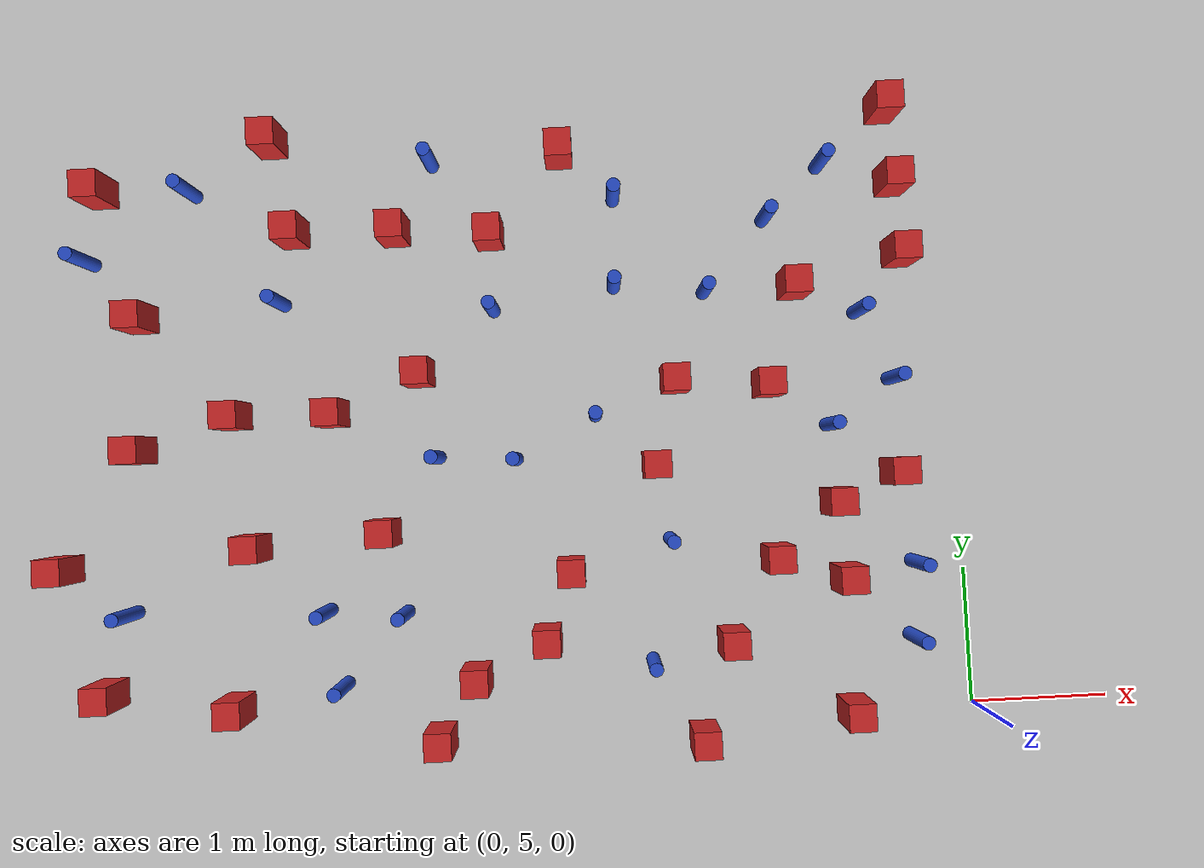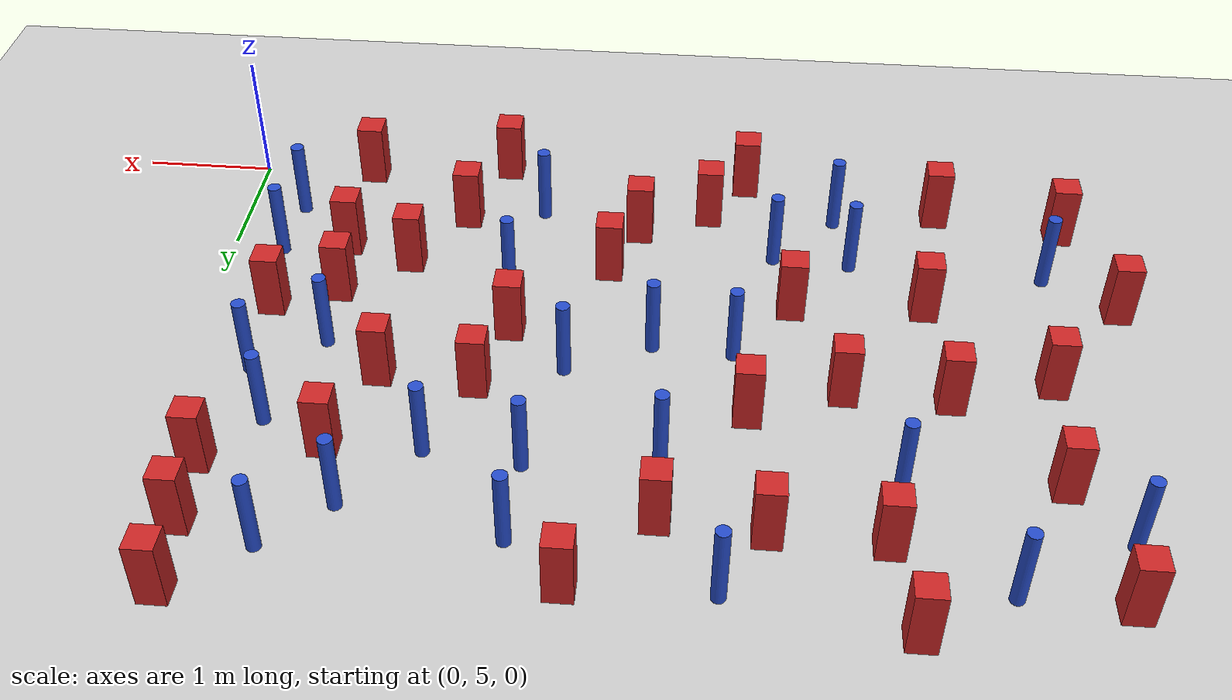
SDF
<sdf version="1.6">
 <world name="default">
  <model name="ground_plane">
   <static>1</static>
   <link name="link">
    <collision name="collision">
     <geometry><plane><normal>0 0 1</normal><size>100 100</size></plane></geometry>
     <surface><friction><ode><mu>100</mu><mu2>50</mu2></ode></friction></surface>
    </collision>
    <visual name="visual">
     <cast_shadows>0</cast_shadows>
     <geometry><plane><normal>0 0 1</normal><size>100 100</size></plane></geometry>
     <material>
      <ambient>1.0 1.0 1.0 1.0</ambient>
      <diffuse>0.8 0.8 0.8 1.0</diffuse>
      <specular>0.01 0.01 0.01 1.000000</specular>
     </material>
    </visual>
   </link>
  </model>
  <model name="square_post_obstacle12">
   <static>true</static>
   <pose>-4.15529586419 8.73507589895 8.22691968438e-08 7.22125133819e-06 -7.54495500217e-07 2.29674213826e-05</pose>
   <link name="link">
    <pose>0 0 0.25 0 -0 0</pose>
    <inertial>
     <mass>100</mass>
     <inertia>
      <ixx>0.166667</ixx>
      <ixy>0</ixy>
      <ixz>0</ixz>
      <iyy>0.166667</iyy>
      <iyz>0</iyz>
      <izz>0.166667</izz>
     </inertia>
    </inertial>
    <collision name="collision"><geometry><box><size>.2 .2 .5</size></box></geometry></collision>
    <visual name="visual">
     <geometry><box><size>.2 .2 .5</size></box></geometry>
     <material>
      <script><name>Gazebo/Red</name><uri>file://media/materials/scripts/gazebo.material</uri></script>
     </material>
    </visual>
   </link>
  </model>
  <model name="pole_obstacle11">
   <static>true</static>
   <pose>-2.20432614599 6.33320191018 2.88873142074e-08 -9.90536689859e-09 4.60219948989e-07 -1.20965994961e-07</pose>
   <link name="link">
    <pose>0 0 0.3 0 -0 0</pose>
    <inertial>
     <mass>1</mass>
     <inertia><ixx>0.145833</ixx><ixy>0</ixy><ixz>0</ixz><iyy>0.145833</iyy><iyz>0</iyz><izz>0.125</izz></inertia>
    </inertial>
    <collision name="collision">
     <geometry><cylinder><radius>0.05</radius><length>.6</length></cylinder></geometry>
    </collision>
    <visual name="visual">
     <geometry><cylinder><radius>0.05</radius><length>.6</length></cylinder></geometry>
     <material>
      <script><name>Gazebo/Blue</name><uri>file://media/materials/scripts/gazebo.material</uri></script>
     </material>
    </visual>
   </link>
  </model>
  <model name="square_post_obstacle20">
   <static>true</static>
   <pose>-5.46918392373 5.24288375753 8.22691968438e-08 7.2212513382e-06 -7.54495500217e-07 2.29674213826e-05</pose>
   <link name="link">
    <pose>0 0 0.25 0 -0 0</pose>
    <inertial>
     <mass>100</mass>
     <inertia>
      <ixx>0.166667</ixx>
      <ixy>0</ixy>
      <ixz>0</ixz>
      <iyy>0.166667</iyy>
      <iyz>0</iyz>
      <izz>0.166667</izz>
     </inertia>
    </inertial>
    <collision name="collision"><geometry><box><size>.2 .2 .5</size></box></geometry></collision>
    <visual name="visual">
     <geometry><box><size>.2 .2 .5</size></box></geometry>
     <material>
      <script><name>Gazebo/Red</name><uri>file://media/materials/scripts/gazebo.material</uri></script>
     </material>
    </visual>
   </link>
  </model>
  <model name="pole_obstacle12">
   <static>true</static>
   <pose>-0.981018825531 7.1291223296 2.88873142074e-08 -9.90536689644e-09 4.60219948994e-07 -1.20965994957e-07</pose>
   <link name="link">
    <pose>0 0 0.3 0 -0 0</pose>
    <inertial>
     <mass>1</mass>
     <inertia><ixx>0.145833</ixx><ixy>0</ixy><ixz>0</ixz><iyy>0.145833</iyy><iyz>0</iyz><izz>0.125</izz></inertia>
    </inertial>
    <collision name="collision">
     <geometry><cylinder><radius>0.05</radius><length>.6</length></cylinder></geometry>
    </collision>
    <visual name="visual">
     <geometry><cylinder><radius>0.05</radius><length>.6</length></cylinder></geometry>
     <material>
      <script><name>Gazebo/Blue</name><uri>file://media/materials/scripts/gazebo.material</uri></script>
     </material>
    </visual>
   </link>
  </model>
  <model name="square_post_obstacle21">
   <static>true</static>
   <pose>-2.03028492216 4.86221257584 8.22691968438e-08 7.22125133819e-06 -7.54495500217e-07 2.29674213826e-05</pose>
   <link name="link">
    <pose>0 0 0.25 0 -0 0</pose>
    <inertial>
     <mass>100</mass>
     <inertia>
      <ixx>0.166667</ixx>
      <ixy>0</ixy>
      <ixz>0</ixz>
      <iyy>0.166667</iyy>
      <iyz>0</iyz>
      <izz>0.166667</izz>
     </inertia>
    </inertial>
    <collision name="collision"><geometry><box><size>.2 .2 .5</size></box></geometry></collision>
    <visual name="visual">
     <geometry><box><size>.2 .2 .5</size></box></geometry>
     <material>
      <script><name>Gazebo/Red</name><uri>file://media/materials/scripts/gazebo.material</uri></script>
     </material>
    </visual>
   </link>
  </model>
  <model name="pole_obstacle21">
   <static>true</static>
   <pose>-2.37584562828 5.43707211398 2.88873142074e-08 -9.90536689859e-09 4.60219948989e-07 -1.20965994961e-07</pose>
   <link name="link">
    <pose>0 0 0.3 0 -0 0</pose>
    <inertial>
     <mass>1</mass>
     <inertia><ixx>0.145833</ixx><ixy>0</ixy><ixz>0</ixz><iyy>0.145833</iyy><iyz>0</iyz><izz>0.125</izz></inertia>
    </inertial>
    <collision name="collision">
     <geometry><cylinder><radius>0.05</radius><length>.6</length></cylinder></geometry>
    </collision>
    <visual name="visual">
     <geometry><cylinder><radius>0.05</radius><length>.6</length></cylinder></geometry>
     <material>
      <script><name>Gazebo/Blue</name><uri>file://media/materials/scripts/gazebo.material</uri></script>
     </material>
    </visual>
   </link>
  </model>
  <model name="square_post_obstacle32">
   <static>true</static>
   <pose>-1.78459588977 5.56165740867 8.22691968438e-08 7.2212513382e-06 -7.54495500217e-07 2.29674213826e-05</pose>
   <link name="link">
    <pose>0 0 0.25 0 -0 0</pose>
    <inertial>
     <mass>100</mass>
     <inertia>
      <ixx>0.166667</ixx>
      <ixy>0</ixy>
      <ixz>0</ixz>
      <iyy>0.166667</iyy>
      <iyz>0</iyz>
      <izz>0.166667</izz>
     </inertia>
    </inertial>
    <collision name="collision"><geometry><box><size>.2 .2 .5</size></box></geometry></collision>
    <visual name="visual">
     <geometry><box><size>.2 .2 .5</size></box></geometry>
     <material>
      <script><name>Gazebo/Red</name><uri>file://media/materials/scripts/gazebo.material</uri></script>
     </material>
    </visual>
   </link>
  </model>
  <model name="square_post_obstacle35">
   <static>true</static>
   <pose>-4.67540025355 7.38899250749 8.22691968438e-08 7.2212513382e-06 -7.54495500217e-07 2.29674213826e-05</pose>
   <link name="link">
    <pose>0 0 0.25 0 -0 0</pose>
    <inertial>
     <mass>100</mass>
     <inertia>
      <ixx>0.166667</ixx>
      <ixy>0</ixy>
      <ixz>0</ixz>
      <iyy>0.166667</iyy>
      <iyz>0</iyz>
      <izz>0.166667</izz>
     </inertia>
    </inertial>
    <collision name="collision"><geometry><box><size>.2 .2 .5</size></box></geometry></collision>
    <visual name="visual">
     <geometry><box><size>.2 .2 .5</size></box></geometry>
     <material>
      <script><name>Gazebo/Red</name><uri>file://media/materials/scripts/gazebo.material</uri></script>
     </material>
    </visual>
   </link>
  </model>
  <model name="pole_obstacle36">
   <static>true</static>
   <pose>-4.6694628473 5.37134205562 2.88873142074e-08 -9.90536690842e-09 4.60219948965e-07 -1.20965994976e-07</pose>
   <link name="link">
    <pose>0 0 0.3 0 -0 0</pose>
    <inertial>
     <mass>1</mass>
     <inertia><ixx>0.145833</ixx><ixy>0</ixy><ixz>0</ixz><iyy>0.145833</iyy><iyz>0</iyz><izz>0.125</izz></inertia>
    </inertial>
    <collision name="collision">
     <geometry><cylinder><radius>0.05</radius><length>.6</length></cylinder></geometry>
    </collision>
    <visual name="visual">
     <geometry><cylinder><radius>0.05</radius><length>.6</length></cylinder></geometry>
     <material>
      <script><name>Gazebo/Blue</name><uri>file://media/materials/scripts/gazebo.material</uri></script>
     </material>
    </visual>
   </link>
  </model>
  <model name="square_post_obstacle36">
   <static>true</static>
   <pose>-4.01650090892 7.65901872811 8.22691968438e-08 7.2212513382e-06 -7.54495500217e-07 2.29674213826e-05</pose>
   <link name="link">
    <pose>0 0 0.25 0 -0 0</pose>
    <inertial>
     <mass>100</mass>
     <inertia>
      <ixx>0.166667</ixx>
      <ixy>0</ixy>
      <ixz>0</ixz>
      <iyy>0.166667</iyy>
      <iyz>0</iyz>
      <izz>0.166667</izz>
     </inertia>
    </inertial>
    <collision name="collision"><geometry><box><size>.2 .2 .5</size></box></geometry></collision>
    <visual name="visual">
     <geometry><box><size>.2 .2 .5</size></box></geometry>
     <material>
      <script><name>Gazebo/Red</name><uri>file://media/materials/scripts/gazebo.material</uri></script>
     </material>
    </visual>
   </link>
  </model>
  <model name="square_post_obstacle37">
   <static>true</static>
   <pose>-1.19906093287 8.18536717646 8.22691968438e-08 7.22125133819e-06 -7.54495500217e-07 2.29674213826e-05</pose>
   <link name="link">
    <pose>0 0 0.25 0 -0 0</pose>
    <inertial>
     <mass>100</mass>
     <inertia>
      <ixx>0.166667</ixx>
      <ixy>0</ixy>
      <ixz>0</ixz>
      <iyy>0.166667</iyy>
      <iyz>0</iyz>
      <izz>0.166667</izz>
     </inertia>
    </inertial>
    <collision name="collision"><geometry><box><size>.2 .2 .5</size></box></geometry></collision>
    <visual name="visual">
     <geometry><box><size>.2 .2 .5</size></box></geometry>
     <material>
      <script><name>Gazebo/Red</name><uri>file://media/materials/scripts/gazebo.material</uri></script>
     </material>
    </visual>
   </link>
  </model>
  <model name="pole_obstacle40">
   <static>true</static>
   <pose>-0.439445643847 5.53030472204 2.88873142074e-08 -9.90536689683e-09 4.60219948993e-07 -1.20965994957e-07</pose>
   <link name="link">
    <pose>0 0 0.3 0 -0 0</pose>
    <inertial>
     <mass>1</mass>
     <inertia><ixx>0.145833</ixx><ixy>0</ixy><ixz>0</ixz><iyy>0.145833</iyy><iyz>0</iyz><izz>0.125</izz></inertia>
    </inertial>
    <collision name="collision">
     <geometry><cylinder><radius>0.05</radius><length>.6</length></cylinder></geometry>
    </collision>
    <visual name="visual">
     <geometry><cylinder><radius>0.05</radius><length>.6</length></cylinder></geometry>
     <material>
      <script><name>Gazebo/Blue</name><uri>file://media/materials/scripts/gazebo.material</uri></script>
     </material>
    </visual>
   </link>
  </model>
  <model name="square_post_obstacle44">
   <static>true</static>
   <pose>-0.913854319643 5.00585240548 8.22691968438e-08 7.22125133819e-06 -7.54495500217e-07 2.29674213826e-05</pose>
   <link name="link">
    <pose>0 0 0.25 0 -0 0</pose>
    <inertial>
     <mass>100</mass>
     <inertia>
      <ixx>0.166667</ixx>
      <ixy>0</ixy>
      <ixz>0</ixz>
      <iyy>0.166667</iyy>
      <iyz>0</iyz>
      <izz>0.166667</izz>
     </inertia>
    </inertial>
    <collision name="collision"><geometry><box><size>.2 .2 .5</size></box></geometry></collision>
    <visual name="visual">
     <geometry><box><size>.2 .2 .5</size></box></geometry>
     <material>
      <script><name>Gazebo/Red</name><uri>file://media/materials/scripts/gazebo.material</uri></script>
     </material>
    </visual>
   </link>
  </model>
  <model name="square_post_obstacle59">
   <static>true</static>
   <pose>-6.09076377882 8.16923131281 8.22691968438e-08 7.22125133819e-06 -7.54495500217e-07 2.29674213826e-05</pose>
   <link name="link">
    <pose>0 0 0.25 0 -0 0</pose>
    <inertial>
     <mass>100</mass>
     <inertia>
      <ixx>0.166667</ixx>
      <ixy>0</ixy>
      <ixz>0</ixz>
      <iyy>0.166667</iyy>
      <iyz>0</iyz>
      <izz>0.166667</izz>
     </inertia>
    </inertial>
    <collision name="collision"><geometry><box><size>.2 .2 .5</size></box></geometry></collision>
    <visual name="visual">
     <geometry><box><size>.2 .2 .5</size></box></geometry>
     <material>
      <script><name>Gazebo/Red</name><uri>file://media/materials/scripts/gazebo.material</uri></script>
     </material>
    </visual>
   </link>
  </model>
  <model name="square_post_obstacle60">
   <static>true</static>
   <pose>-6.13876946278 7.18456155953 8.22691968438e-08 7.22125133819e-06 -7.54495500217e-07 2.29674213826e-05</pose>
   <link name="link">
    <pose>0 0 0.25 0 -0 0</pose>
    <inertial>
     <mass>100</mass>
     <inertia>
      <ixx>0.166667</ixx>
      <ixy>0</ixy>
      <ixz>0</ixz>
      <iyy>0.166667</iyy>
      <iyz>0</iyz>
      <izz>0.166667</izz>
     </inertia>
    </inertial>
    <collision name="collision"><geometry><box><size>.2 .2 .5</size></box></geometry></collision>
    <visual name="visual">
     <geometry><box><size>.2 .2 .5</size></box></geometry>
     <material>
      <script><name>Gazebo/Red</name><uri>file://media/materials/scripts/gazebo.material</uri></script>
     </material>
    </visual>
   </link>
  </model>
  <model name="pole_obstacle57">
   <static>true</static>
   <pose>-2.53593312598 8.24602093879 2.88873142074e-08 -9.90536692318e-09 4.6021994893e-07 -1.20965994988e-07</pose>
   <link name="link">
    <pose>0 0 0.3 0 -0 0</pose>
    <inertial>
     <mass>1</mass>
     <inertia><ixx>0.145833</ixx><ixy>0</ixy><ixz>0</ixz><iyy>0.145833</iyy><iyz>0</iyz><izz>0.125</izz></inertia>
    </inertial>
    <collision name="collision">
     <geometry><cylinder><radius>0.05</radius><length>.6</length></cylinder></geometry>
    </collision>
    <visual name="visual">
     <geometry><cylinder><radius>0.05</radius><length>.6</length></cylinder></geometry>
     <material>
      <script><name>Gazebo/Blue</name><uri>file://media/materials/scripts/gazebo.material</uri></script>
     </material>
    </visual>
   </link>
  </model>
  <model name="pole_obstacle70">
   <static>true</static>
   <pose>-6.22672294216 5.97556806077 2.88873142074e-08 -9.90536690842e-09 4.60219948965e-07 -1.20965994976e-07</pose>
   <link name="link">
    <pose>0 0 0.3 0 -0 0</pose>
    <inertial>
     <mass>1</mass>
     <inertia><ixx>0.145833</ixx><ixy>0</ixy><ixz>0</ixz><iyy>0.145833</iyy><iyz>0</iyz><izz>0.125</izz></inertia>
    </inertial>
    <collision name="collision">
     <geometry><cylinder><radius>0.05</radius><length>.6</length></cylinder></geometry>
    </collision>
    <visual name="visual">
     <geometry><cylinder><radius>0.05</radius><length>.6</length></cylinder></geometry>
     <material>
      <script><name>Gazebo/Blue</name><uri>file://media/materials/scripts/gazebo.material</uri></script>
     </material>
    </visual>
   </link>
  </model>
  <model name="square_post_obstacle82">
   <static>true</static>
   <pose>-3.68296513192 5.38272877225 8.22691968438e-08 7.2212513382e-06 -7.54495500217e-07 2.29674213826e-05</pose>
   <link name="link">
    <pose>0 0 0.25 0 -0 0</pose>
    <inertial>
     <mass>100</mass>
     <inertia>
      <ixx>0.166667</ixx>
      <ixy>0</ixy>
      <ixz>0</ixz>
      <iyy>0.166667</iyy>
      <iyz>0</iyz>
      <izz>0.166667</izz>
     </inertia>
    </inertial>
    <collision name="collision"><geometry><box><size>.2 .2 .5</size></box></geometry></collision>
    <visual name="visual">
     <geometry><box><size>.2 .2 .5</size></box></geometry>
     <material>
      <script><name>Gazebo/Red</name><uri>file://media/materials/scripts/gazebo.material</uri></script>
     </material>
    </visual>
   </link>
  </model>
  <model name="pole_obstacle91">
   <static>true</static>
   <pose>-6.45919030858 8.61125207409 2.88873142074e-08 -9.9053668967e-09 4.60219948993e-07 -1.20965994957e-07</pose>
   <link name="link">
    <pose>0 0 0.3 0 -0 0</pose>
    <inertial>
     <mass>1</mass>
     <inertia><ixx>0.145833</ixx><ixy>0</ixy><ixz>0</ixz><iyy>0.145833</iyy><iyz>0</iyz><izz>0.125</izz></inertia>
    </inertial>
    <collision name="collision">
     <geometry><cylinder><radius>0.05</radius><length>.6</length></cylinder></geometry>
    </collision>
    <visual name="visual">
     <geometry><cylinder><radius>0.05</radius><length>.6</length></cylinder></geometry>
     <material>
      <script><name>Gazebo/Blue</name><uri>file://media/materials/scripts/gazebo.material</uri></script>
     </material>
    </visual>
   </link>
  </model>
  <model name="pole_obstacle97">
   <static>true</static>
   <pose>-5.02759815736 8.23315547752 2.88873142074e-08 -9.9053668967e-09 4.60219948993e-07 -1.20965994957e-07</pose>
   <link name="link">
    <pose>0 0 0.3 0 -0 0</pose>
    <inertial>
     <mass>1</mass>
     <inertia><ixx>0.145833</ixx><ixy>0</ixy><ixz>0</ixz><iyy>0.145833</iyy><iyz>0</iyz><izz>0.125</izz></inertia>
    </inertial>
    <collision name="collision">
     <geometry><cylinder><radius>0.05</radius><length>.6</length></cylinder></geometry>
    </collision>
    <visual name="visual">
     <geometry><cylinder><radius>0.05</radius><length>.6</length></cylinder></geometry>
     <material>
      <script><name>Gazebo/Blue</name><uri>file://media/materials/scripts/gazebo.material</uri></script>
     </material>
    </visual>
   </link>
  </model>
  <model name="pole_obstacle98">
   <static>true</static>
   <pose>-3.86528735981 9.23869462663 2.88873142074e-08 -9.9053668994e-09 4.60219948987e-07 -1.20965994963e-07</pose>
   <link name="link">
    <pose>0 0 0.3 0 -0 0</pose>
    <inertial>
     <mass>1</mass>
     <inertia><ixx>0.145833</ixx><ixy>0</ixy><ixz>0</ixz><iyy>0.145833</iyy><iyz>0</iyz><izz>0.125</izz></inertia>
    </inertial>
    <collision name="collision">
     <geometry><cylinder><radius>0.05</radius><length>.6</length></cylinder></geometry>
    </collision>
    <visual name="visual">
     <geometry><cylinder><radius>0.05</radius><length>.6</length></cylinder></geometry>
     <material>
      <script><name>Gazebo/Blue</name><uri>file://media/materials/scripts/gazebo.material</uri></script>
     </material>
    </visual>
   </link>
  </model>
  <model name="pole_obstacle100">
   <static>true</static>
   <pose>-3.44760402041 8.11159592273 2.88873142074e-08 -9.90536692318e-09 4.6021994893e-07 -1.20965994988e-07</pose>
   <link name="link">
    <pose>0 0 0.3 0 -0 0</pose>
    <inertial>
     <mass>1</mass>
     <inertia><ixx>0.145833</ixx><ixy>0</ixy><ixz>0</ixz><iyy>0.145833</iyy><iyz>0</iyz><izz>0.125</izz></inertia>
    </inertial>
    <collision name="collision">
     <geometry><cylinder><radius>0.05</radius><length>.6</length></cylinder></geometry>
    </collision>
    <visual name="visual">
     <geometry><cylinder><radius>0.05</radius><length>.6</length></cylinder></geometry>
     <material>
      <script><name>Gazebo/Blue</name><uri>file://media/materials/scripts/gazebo.material</uri></script>
     </material>
    </visual>
   </link>
  </model>
  <model name="square_post_obstacle88">
   <static>true</static>
   <pose>-0.463203669507 9.49600784472 8.22691968438e-08 7.22125133819e-06 -7.54495500217e-07 2.29674213826e-05</pose>
   <link name="link">
    <pose>0 0 0.25 0 -0 0</pose>
    <inertial>
     <mass>100</mass>
     <inertia>
      <ixx>0.166667</ixx>
      <ixy>0</ixy>
      <ixz>0</ixz>
      <iyy>0.166667</iyy>
      <iyz>0</iyz>
      <izz>0.166667</izz>
     </inertia>
    </inertial>
    <collision name="collision"><geometry><box><size>.2 .2 .5</size></box></geometry></collision>
    <visual name="visual">
     <geometry><box><size>.2 .2 .5</size></box></geometry>
     <material>
      <script><name>Gazebo/Red</name><uri>file://media/materials/scripts/gazebo.material</uri></script>
     </material>
    </visual>
   </link>
  </model>
  <model name="square_post_obstacle91">
   <static>true</static>
   <pose>-3.4461023965 8.67388486071 8.22691968438e-08 7.22125133819e-06 -7.54495500217e-07 2.29674213826e-05</pose>
   <link name="link">
    <pose>0 0 0.25 0 -0 0</pose>
    <inertial>
     <mass>100</mass>
     <inertia>
      <ixx>0.166667</ixx>
      <ixy>0</ixy>
      <ixz>0</ixz>
      <iyy>0.166667</iyy>
      <iyz>0</iyz>
      <izz>0.166667</izz>
     </inertia>
    </inertial>
    <collision name="collision"><geometry><box><size>.2 .2 .5</size></box></geometry></collision>
    <visual name="visual">
     <geometry><box><size>.2 .2 .5</size></box></geometry>
     <material>
      <script><name>Gazebo/Red</name><uri>file://media/materials/scripts/gazebo.material</uri></script>
     </material>
    </visual>
   </link>
  </model>
  <model name="square_post_obstacle97">
   <static>true</static>
   <pose>-5.4121443268 7.40579461723 8.22691968438e-08 7.2212513382e-06 -7.54495500217e-07 2.29674213826e-05</pose>
   <link name="link">
    <pose>0 0 0.25 0 -0 0</pose>
    <inertial>
     <mass>100</mass>
     <inertia>
      <ixx>0.166667</ixx>
      <ixy>0</ixy>
      <ixz>0</ixz>
      <iyy>0.166667</iyy>
      <iyz>0</iyz>
      <izz>0.166667</izz>
     </inertia>
    </inertial>
    <collision name="collision"><geometry><box><size>.2 .2 .5</size></box></geometry></collision>
    <visual name="visual">
     <geometry><box><size>.2 .2 .5</size></box></geometry>
     <material>
      <script><name>Gazebo/Red</name><uri>file://media/materials/scripts/gazebo.material</uri></script>
     </material>
    </visual>
   </link>
  </model>
  <model name="square_post_obstacle106">
   <static>true</static>
   <pose>-4.32275136199 6.48903231942 8.22691968438e-08 7.2212513382e-06 -7.54495500217e-07 2.29674213826e-05</pose>
   <link name="link">
    <pose>0 0 0.25 0 -0 0</pose>
    <inertial>
     <mass>100</mass>
     <inertia>
      <ixx>0.166667</ixx>
      <ixy>0</ixy>
      <ixz>0</ixz>
      <iyy>0.166667</iyy>
      <iyz>0</iyz>
      <izz>0.166667</izz>
     </inertia>
    </inertial>
    <collision name="collision"><geometry><box><size>.2 .2 .5</size></box></geometry></collision>
    <visual name="visual">
     <geometry><box><size>.2 .2 .5</size></box></geometry>
     <material>
      <script><name>Gazebo/Red</name><uri>file://media/materials/scripts/gazebo.material</uri></script>
     </material>
    </visual>
   </link>
  </model>
  <model name="square_post_obstacle108">
   <static>true</static>
   <pose>-0.42082902612 8.93598194787 8.22691968438e-08 7.22125133819e-06 -7.54495500217e-07 2.29674213826e-05</pose>
   <link name="link">
    <pose>0 0 0.25 0 -0 0</pose>
    <inertial>
     <mass>100</mass>
     <inertia>
      <ixx>0.166667</ixx>
      <ixy>0</ixy>
      <ixz>0</ixz>
      <iyy>0.166667</iyy>
      <iyz>0</iyz>
      <izz>0.166667</izz>
     </inertia>
    </inertial>
    <collision name="collision"><geometry><box><size>.2 .2 .5</size></box></geometry></collision>
    <visual name="visual">
     <geometry><box><size>.2 .2 .5</size></box></geometry>
     <material>
      <script><name>Gazebo/Red</name><uri>file://media/materials/scripts/gazebo.material</uri></script>
     </material>
    </visual>
   </link>
  </model>
  <model name="square_post_obstacle112">
   <static>true</static>
   <pose>-5.300884937 6.42165302158 8.22691968438e-08 7.2212513382e-06 -7.54495500217e-07 2.29674213826e-05</pose>
   <link name="link">
    <pose>0 0 0.25 0 -0 0</pose>
    <inertial>
     <mass>100</mass>
     <inertia>
      <ixx>0.166667</ixx>
      <ixy>0</ixy>
      <ixz>0</ixz>
      <iyy>0.166667</iyy>
      <iyz>0</iyz>
      <izz>0.166667</izz>
     </inertia>
    </inertial>
    <collision name="collision"><geometry><box><size>.2 .2 .5</size></box></geometry></collision>
    <visual name="visual">
     <geometry><box><size>.2 .2 .5</size></box></geometry>
     <material>
      <script><name>Gazebo/Red</name><uri>file://media/materials/scripts/gazebo.material</uri></script>
     </material>
    </visual>
   </link>
  </model>
  <model name="pole_obstacle124">
   <static>true</static>
   <pose>-1.86073296695 8.17098072513 2.88873142074e-08 -9.90536690474e-09 4.60219948974e-07 -1.2096599497e-07</pose>
   <link name="link">
    <pose>0 0 0.3 0 -0 0</pose>
    <inertial>
     <mass>1</mass>
     <inertia><ixx>0.145833</ixx><ixy>0</ixy><ixz>0</ixz><iyy>0.145833</iyy><iyz>0</iyz><izz>0.125</izz></inertia>
    </inertial>
    <collision name="collision">
     <geometry><cylinder><radius>0.05</radius><length>.6</length></cylinder></geometry>
    </collision>
    <visual name="visual">
     <geometry><cylinder><radius>0.05</radius><length>.6</length></cylinder></geometry>
     <material>
      <script><name>Gazebo/Blue</name><uri>file://media/materials/scripts/gazebo.material</uri></script>
     </material>
    </visual>
   </link>
  </model>
  <model name="pole_obstacle130">
   <static>true</static>
   <pose>-0.954848379756 9.08391322714 2.88873142074e-08 -9.90536690773e-09 4.60219948967e-07 -1.20965994976e-07</pose>
   <link name="link">
    <pose>0 0 0.3 0 -0 0</pose>
    <inertial>
     <mass>1</mass>
     <inertia><ixx>0.145833</ixx><ixy>0</ixy><ixz>0</ixz><iyy>0.145833</iyy><iyz>0</iyz><izz>0.125</izz></inertia>
    </inertial>
    <collision name="collision">
     <geometry><cylinder><radius>0.05</radius><length>.6</length></cylinder></geometry>
    </collision>
    <visual name="visual">
     <geometry><cylinder><radius>0.05</radius><length>.6</length></cylinder></geometry>
     <material>
      <script><name>Gazebo/Blue</name><uri>file://media/materials/scripts/gazebo.material</uri></script>
     </material>
    </visual>
   </link>
  </model>
  <model name="square_post_obstacle116">
   <static>true</static>
   <pose>-2.89984776278 9.26848642215 8.22691968438e-08 7.22125133819e-06 -7.54495500217e-07 2.29674213826e-05</pose>
   <link name="link">
    <pose>0 0 0.25 0 -0 0</pose>
    <inertial>
     <mass>100</mass>
     <inertia>
      <ixx>0.166667</ixx>
      <ixy>0</ixy>
      <ixz>0</ixz>
      <iyy>0.166667</iyy>
      <iyz>0</iyz>
      <izz>0.166667</izz>
     </inertia>
    </inertial>
    <collision name="collision"><geometry><box><size>.2 .2 .5</size></box></geometry></collision>
    <visual name="visual">
     <geometry><box><size>.2 .2 .5</size></box></geometry>
     <material>
      <script><name>Gazebo/Red</name><uri>file://media/materials/scripts/gazebo.material</uri></script>
     </material>
    </visual>
   </link>
  </model>
  <model name="square_post_obstacle119">
   <static>true</static>
   <pose>-0.957171782625 6.55675877445 8.22691968438e-08 7.22125133819e-06 -7.54495500217e-07 2.29674213826e-05</pose>
   <link name="link">
    <pose>0 0 0.25 0 -0 0</pose>
    <inertial>
     <mass>100</mass>
     <inertia>
      <ixx>0.166667</ixx>
      <ixy>0</ixy>
      <ixz>0</ixz>
      <iyy>0.166667</iyy>
      <iyz>0</iyz>
      <izz>0.166667</izz>
     </inertia>
    </inertial>
    <collision name="collision"><geometry><box><size>.2 .2 .5</size></box></geometry></collision>
    <visual name="visual">
     <geometry><box><size>.2 .2 .5</size></box></geometry>
     <material>
      <script><name>Gazebo/Red</name><uri>file://media/materials/scripts/gazebo.material</uri></script>
     </material>
    </visual>
   </link>
  </model>
  <model name="square_post_obstacle120">
   <static>true</static>
   <pose>-2.11844534396 7.5178122674 8.22691968438e-08 7.2212513382e-06 -7.54495500217e-07 2.29674213826e-05</pose>
   <link name="link">
    <pose>0 0 0.25 0 -0 0</pose>
    <inertial>
     <mass>100</mass>
     <inertia>
      <ixx>0.166667</ixx>
      <ixy>0</ixy>
      <ixz>0</ixz>
      <iyy>0.166667</iyy>
      <iyz>0</iyz>
      <izz>0.166667</izz>
     </inertia>
    </inertial>
    <collision name="collision"><geometry><box><size>.2 .2 .5</size></box></geometry></collision>
    <visual name="visual">
     <geometry><box><size>.2 .2 .5</size></box></geometry>
     <material>
      <script><name>Gazebo/Red</name><uri>file://media/materials/scripts/gazebo.material</uri></script>
     </material>
    </visual>
   </link>
  </model>
  <model name="pole_obstacle139">
   <static>true</static>
   <pose>-0.725516553106 7.96615919971 2.88873142074e-08 -9.90536690208e-09 4.6021994898e-07 -1.20965994966e-07</pose>
   <link name="link">
    <pose>0 0 0.3 0 -0 0</pose>
    <inertial>
     <mass>1</mass>
     <inertia><ixx>0.145833</ixx><ixy>0</ixy><ixz>0</ixz><iyy>0.145833</iyy><iyz>0</iyz><izz>0.125</izz></inertia>
    </inertial>
    <collision name="collision">
     <geometry><cylinder><radius>0.05</radius><length>.6</length></cylinder></geometry>
    </collision>
    <visual name="visual">
     <geometry><cylinder><radius>0.05</radius><length>.6</length></cylinder></geometry>
     <material>
      <script><name>Gazebo/Blue</name><uri>file://media/materials/scripts/gazebo.material</uri></script>
     </material>
    </visual>
   </link>
  </model>
  <model name="square_post_obstacle123">
   <static>true</static>
   <pose>-5.05824631249 9.45466916856 8.22691968438e-08 7.22125133819e-06 -7.54495500217e-07 2.29674213826e-05</pose>
   <link name="link">
    <pose>0 0 0.25 0 -0 0</pose>
    <inertial>
     <mass>100</mass>
     <inertia>
      <ixx>0.166667</ixx>
      <ixy>0</ixy>
      <ixz>0</ixz>
      <iyy>0.166667</iyy>
      <iyz>0</iyz>
      <izz>0.166667</izz>
     </inertia>
    </inertial>
    <collision name="collision"><geometry><box><size>.2 .2 .5</size></box></geometry></collision>
    <visual name="visual">
     <geometry><box><size>.2 .2 .5</size></box></geometry>
     <material>
      <script><name>Gazebo/Red</name><uri>file://media/materials/scripts/gazebo.material</uri></script>
     </material>
    </visual>
   </link>
  </model>
  <model name="square_post_obstacle129">
   <static>true</static>
   <pose>-0.494745892246 6.75791051246 8.22691968438e-08 7.22125133819e-06 -7.54495500217e-07 2.29674213826e-05</pose>
   <link name="link">
    <pose>0 0 0.25 0 -0 0</pose>
    <inertial>
     <mass>100</mass>
     <inertia>
      <ixx>0.166667</ixx>
      <ixy>0</ixy>
      <ixz>0</ixz>
      <iyy>0.166667</iyy>
      <iyz>0</iyz>
      <izz>0.166667</izz>
     </inertia>
    </inertial>
    <collision name="collision"><geometry><box><size>.2 .2 .5</size></box></geometry></collision>
    <visual name="visual">
     <geometry><box><size>.2 .2 .5</size></box></geometry>
     <material>
      <script><name>Gazebo/Red</name><uri>file://media/materials/scripts/gazebo.material</uri></script>
     </material>
    </visual>
   </link>
  </model>
  <model name="pole_obstacle143">
   <static>true</static>
   <pose>-3.32647800412 6.98409461046 2.88873142074e-08 -9.90536692062e-09 4.60219948937e-07 -1.20965994985e-07</pose>
   <link name="link">
    <pose>0 0 0.3 0 -0 0</pose>
    <inertial>
     <mass>1</mass>
     <inertia><ixx>0.145833</ixx><ixy>0</ixy><ixz>0</ixz><iyy>0.145833</iyy><iyz>0</iyz><izz>0.125</izz></inertia>
    </inertial>
    <collision name="collision">
     <geometry><cylinder><radius>0.05</radius><length>.6</length></cylinder></geometry>
    </collision>
    <visual name="visual">
     <geometry><cylinder><radius>0.05</radius><length>.6</length></cylinder></geometry>
     <material>
      <script><name>Gazebo/Blue</name><uri>file://media/materials/scripts/gazebo.material</uri></script>
     </material>
    </visual>
   </link>
  </model>
  <model name="pole_obstacle149">
   <static>true</static>
   <pose>-5.66737917682 9.09546461216 2.88873142074e-08 -9.9053668967e-09 4.60219948993e-07 -1.20965994957e-07</pose>
   <link name="link">
    <pose>0 0 0.3 0 -0 0</pose>
    <inertial>
     <mass>1</mass>
     <inertia><ixx>0.145833</ixx><ixy>0</ixy><ixz>0</ixz><iyy>0.145833</iyy><iyz>0</iyz><izz>0.125</izz></inertia>
    </inertial>
    <collision name="collision">
     <geometry><cylinder><radius>0.05</radius><length>.6</length></cylinder></geometry>
    </collision>
    <visual name="visual">
     <geometry><cylinder><radius>0.05</radius><length>.6</length></cylinder></geometry>
     <material>
      <script><name>Gazebo/Blue</name><uri>file://media/materials/scripts/gazebo.material</uri></script>
     </material>
    </visual>
   </link>
  </model>
  <model name="pole_obstacle156">
   <static>true</static>
   <pose>-1.38537298147 8.69771946096 2.88873142074e-08 -9.90536690474e-09 4.60219948974e-07 -1.2096599497e-07</pose>
   <link name="link">
    <pose>0 0 0.3 0 -0 0</pose>
    <inertial>
     <mass>1</mass>
     <inertia><ixx>0.145833</ixx><ixy>0</ixy><ixz>0</ixz><iyy>0.145833</iyy><iyz>0</iyz><izz>0.125</izz></inertia>
    </inertial>
    <collision name="collision">
     <geometry><cylinder><radius>0.05</radius><length>.6</length></cylinder></geometry>
    </collision>
    <visual name="visual">
     <geometry><cylinder><radius>0.05</radius><length>.6</length></cylinder></geometry>
     <material>
      <script><name>Gazebo/Blue</name><uri>file://media/materials/scripts/gazebo.material</uri></script>
     </material>
    </visual>
   </link>
  </model>
  <model name="pole_obstacle163">
   <static>true</static>
   <pose>-2.71876578621 7.28432553413 2.88873142074e-08 -9.90536689859e-09 4.60219948989e-07 -1.20965994961e-07</pose>
   <link name="link">
    <pose>0 0 0.3 0 -0 0</pose>
    <inertial>
     <mass>1</mass>
     <inertia><ixx>0.145833</ixx><ixy>0</ixy><ixz>0</ixz><iyy>0.145833</iyy><iyz>0</iyz><izz>0.125</izz></inertia>
    </inertial>
    <collision name="collision">
     <geometry><cylinder><radius>0.05</radius><length>.6</length></cylinder></geometry>
    </collision>
    <visual name="visual">
     <geometry><cylinder><radius>0.05</radius><length>.6</length></cylinder></geometry>
     <material>
      <script><name>Gazebo/Blue</name><uri>file://media/materials/scripts/gazebo.material</uri></script>
     </material>
    </visual>
   </link>
  </model>
  <model name="pole_obstacle166">
   <static>true</static>
   <pose>-4.19493498621 5.88146584996 2.88873142074e-08 -9.90536690842e-09 4.60219948965e-07 -1.20965994976e-07</pose>
   <link name="link">
    <pose>0 0 0.3 0 -0 0</pose>
    <inertial>
     <mass>1</mass>
     <inertia><ixx>0.145833</ixx><ixy>0</ixy><ixz>0</ixz><iyy>0.145833</iyy><iyz>0</iyz><izz>0.125</izz></inertia>
    </inertial>
    <collision name="collision">
     <geometry><cylinder><radius>0.05</radius><length>.6</length></cylinder></geometry>
    </collision>
    <visual name="visual">
     <geometry><cylinder><radius>0.05</radius><length>.6</length></cylinder></geometry>
     <material>
      <script><name>Gazebo/Blue</name><uri>file://media/materials/scripts/gazebo.material</uri></script>
     </material>
    </visual>
   </link>
  </model>
  <model name="square_post_obstacle160">
   <static>true</static>
   <pose>-6.72194300107 6.32744031955 8.22691968438e-08 7.22125133819e-06 -7.54495500217e-07 2.29674213826e-05</pose>
   <link name="link">
    <pose>0 0 0.25 0 -0 0</pose>
    <inertial>
     <mass>100</mass>
     <inertia>
      <ixx>0.166667</ixx>
      <ixy>0</ixy>
      <ixz>0</ixz>
      <iyy>0.166667</iyy>
      <iyz>0</iyz>
      <izz>0.166667</izz>
     </inertia>
    </inertial>
    <collision name="collision"><geometry><box><size>.2 .2 .5</size></box></geometry></collision>
    <visual name="visual">
     <geometry><box><size>.2 .2 .5</size></box></geometry>
     <material>
      <script><name>Gazebo/Red</name><uri>file://media/materials/scripts/gazebo.material</uri></script>
     </material>
    </visual>
   </link>
  </model>
  <model name="pole_obstacle168">
   <static>true</static>
   <pose>-2.50970278957 8.90900588738 2.88873142074e-08 -9.90536692318e-09 4.6021994893e-07 -1.20965994988e-07</pose>
   <link name="link">
    <pose>0 0 0.3 0 -0 0</pose>
    <inertial>
     <mass>1</mass>
     <inertia><ixx>0.145833</ixx><ixy>0</ixy><ixz>0</ixz><iyy>0.145833</iyy><iyz>0</iyz><izz>0.125</izz></inertia>
    </inertial>
    <collision name="collision">
     <geometry><cylinder><radius>0.05</radius><length>.6</length></cylinder></geometry>
    </collision>
    <visual name="visual">
     <geometry><cylinder><radius>0.05</radius><length>.6</length></cylinder></geometry>
     <material>
      <script><name>Gazebo/Blue</name><uri>file://media/materials/scripts/gazebo.material</uri></script>
     </material>
    </visual>
   </link>
  </model>
  <model name="square_post_obstacle180">
   <static>true</static>
   <pose>-1.42599482013 6.16059064783 8.22691968438e-08 7.2212513382e-06 -7.54495500217e-07 2.29674213826e-05</pose>
   <link name="link">
    <pose>0 0 0.25 0 -0 0</pose>
    <inertial>
     <mass>100</mass>
     <inertia>
      <ixx>0.166667</ixx>
      <ixy>0</ixy>
      <ixz>0</ixz>
      <iyy>0.166667</iyy>
      <iyz>0</iyz>
      <izz>0.166667</izz>
     </inertia>
    </inertial>
    <collision name="collision"><geometry><box><size>.2 .2 .5</size></box></geometry></collision>
    <visual name="visual">
     <geometry><box><size>.2 .2 .5</size></box></geometry>
     <material>
      <script><name>Gazebo/Red</name><uri>file://media/materials/scripts/gazebo.material</uri></script>
     </material>
    </visual>
   </link>
  </model>
  <model name="square_post_obstacle187">
   <static>true</static>
   <pose>-4.91842649968 8.75858619343 8.22691968438e-08 7.22125133819e-06 -7.54495500217e-07 2.29674213826e-05</pose>
   <link name="link">
    <pose>0 0 0.25 0 -0 0</pose>
    <inertial>
     <mass>100</mass>
     <inertia>
      <ixx>0.166667</ixx>
      <ixy>0</ixy>
      <ixz>0</ixz>
      <iyy>0.166667</iyy>
      <iyz>0</iyz>
      <izz>0.166667</izz>
     </inertia>
    </inertial>
    <collision name="collision"><geometry><box><size>.2 .2 .5</size></box></geometry></collision>
    <visual name="visual">
     <geometry><box><size>.2 .2 .5</size></box></geometry>
     <material>
      <script><name>Gazebo/Red</name><uri>file://media/materials/scripts/gazebo.material</uri></script>
     </material>
    </visual>
   </link>
  </model>
  <model name="square_post_obstacle195">
   <static>true</static>
   <pose>-6.35939817978 9.13638460649 8.22691968438e-08 7.22125133819e-06 -7.54495500217e-07 2.29674213826e-05</pose>
   <link name="link">
    <pose>0 0 0.25 0 -0 0</pose>
    <inertial>
     <mass>100</mass>
     <inertia>
      <ixx>0.166667</ixx>
      <ixy>0</ixy>
      <ixz>0</ixz>
      <iyy>0.166667</iyy>
      <iyz>0</iyz>
      <izz>0.166667</izz>
     </inertia>
    </inertial>
    <collision name="collision"><geometry><box><size>.2 .2 .5</size></box></geometry></collision>
    <visual name="visual">
     <geometry><box><size>.2 .2 .5</size></box></geometry>
     <material>
      <script><name>Gazebo/Red</name><uri>file://media/materials/scripts/gazebo.material</uri></script>
     </material>
    </visual>
   </link>
  </model>
  <model name="square_post_obstacle197">
   <static>true</static>
   <pose>-3.9677541713 4.94707193848 8.22691968438e-08 7.22125133819e-06 -7.54495500217e-07 2.29674213826e-05</pose>
   <link name="link">
    <pose>0 0 0.25 0 -0 0</pose>
    <inertial>
     <mass>100</mass>
     <inertia>
      <ixx>0.166667</ixx>
      <ixy>0</ixy>
      <ixz>0</ixz>
      <iyy>0.166667</iyy>
      <iyz>0</iyz>
      <izz>0.166667</izz>
     </inertia>
    </inertial>
    <collision name="collision"><geometry><box><size>.2 .2 .5</size></box></geometry></collision>
    <visual name="visual">
     <geometry><box><size>.2 .2 .5</size></box></geometry>
     <material>
      <script><name>Gazebo/Red</name><uri>file://media/materials/scripts/gazebo.material</uri></script>
     </material>
    </visual>
   </link>
  </model>
  <model name="square_post_obstacle198">
   <static>true</static>
   <pose>-0.911301305256 5.98817356842 8.22691968438e-08 7.22125133819e-06 -7.54495500217e-07 2.29674213826e-05</pose>
   <link name="link">
    <pose>0 0 0.25 0 -0 0</pose>
    <inertial>
     <mass>100</mass>
     <inertia>
      <ixx>0.166667</ixx>
      <ixy>0</ixy>
      <ixz>0</ixz>
      <iyy>0.166667</iyy>
      <iyz>0</iyz>
      <izz>0.166667</izz>
     </inertia>
    </inertial>
    <collision name="collision"><geometry><box><size>.2 .2 .5</size></box></geometry></collision>
    <visual name="visual">
     <geometry><box><size>.2 .2 .5</size></box></geometry>
     <material>
      <script><name>Gazebo/Red</name><uri>file://media/materials/scripts/gazebo.material</uri></script>
     </material>
    </visual>
   </link>
  </model>
  <model name="pole_obstacle189">
   <static>true</static>
   <pose>-0.396547351549 6.07904567719 2.88873142074e-08 -9.90536689683e-09 4.60219948993e-07 -1.20965994957e-07</pose>
   <link name="link">
    <pose>0 0 0.3 0 -0 0</pose>
    <inertial>
     <mass>1</mass>
     <inertia><ixx>0.145833</ixx><ixy>0</ixy><ixz>0</ixz><iyy>0.145833</iyy><iyz>0</iyz><izz>0.125</izz></inertia>
    </inertial>
    <collision name="collision">
     <geometry><cylinder><radius>0.05</radius><length>.6</length></cylinder></geometry>
    </collision>
    <visual name="visual">
     <geometry><cylinder><radius>0.05</radius><length>.6</length></cylinder></geometry>
     <material>
      <script><name>Gazebo/Blue</name><uri>file://media/materials/scripts/gazebo.material</uri></script>
     </material>
    </visual>
   </link>
  </model>
  <model name="pole_obstacle195">
   <static>true</static>
   <pose>-4.7753001555 5.92215391192 2.88873142074e-08 -9.90536690842e-09 4.60219948965e-07 -1.20965994976e-07</pose>
   <link name="link">
    <pose>0 0 0.3 0 -0 0</pose>
    <inertial>
     <mass>1</mass>
     <inertia><ixx>0.145833</ixx><ixy>0</ixy><ixz>0</ixz><iyy>0.145833</iyy><iyz>0</iyz><izz>0.125</izz></inertia>
    </inertial>
    <collision name="collision">
     <geometry><cylinder><radius>0.05</radius><length>.6</length></cylinder></geometry>
    </collision>
    <visual name="visual">
     <geometry><cylinder><radius>0.05</radius><length>.6</length></cylinder></geometry>
     <material>
      <script><name>Gazebo/Blue</name><uri>file://media/materials/scripts/gazebo.material</uri></script>
     </material>
    </visual>
   </link>
  </model>
  <model name="square_post_obstacle210">
   <static>true</static>
   <pose>-2.9507993672 6.13679773486 8.22691968438e-08 7.2212513382e-06 -7.54495500217e-07 2.29674213826e-05</pose>
   <link name="link">
    <pose>0 0 0.25 0 -0 0</pose>
    <inertial>
     <mass>100</mass>
     <inertia>
      <ixx>0.166667</ixx>
      <ixy>0</ixy>
      <ixz>0</ixz>
      <iyy>0.166667</iyy>
      <iyz>0</iyz>
      <izz>0.166667</izz>
     </inertia>
    </inertial>
    <collision name="collision"><geometry><box><size>.2 .2 .5</size></box></geometry></collision>
    <visual name="visual">
     <geometry><box><size>.2 .2 .5</size></box></geometry>
     <material>
      <script><name>Gazebo/Red</name><uri>file://media/materials/scripts/gazebo.material</uri></script>
     </material>
    </visual>
   </link>
  </model>
  <model name="square_post_obstacle215">
   <static>true</static>
   <pose>-1.42701575062 7.45567194513 8.22691968438e-08 7.2212513382e-06 -7.54495500217e-07 2.29674213826e-05</pose>
   <link name="link">
    <pose>0 0 0.25 0 -0 0</pose>
    <inertial>
     <mass>100</mass>
     <inertia>
      <ixx>0.166667</ixx>
      <ixy>0</ixy>
      <ixz>0</ixz>
      <iyy>0.166667</iyy>
      <iyz>0</iyz>
      <izz>0.166667</izz>
     </inertia>
    </inertial>
    <collision name="collision"><geometry><box><size>.2 .2 .5</size></box></geometry></collision>
    <visual name="visual">
     <geometry><box><size>.2 .2 .5</size></box></geometry>
     <material>
      <script><name>Gazebo/Red</name><uri>file://media/materials/scripts/gazebo.material</uri></script>
     </material>
    </visual>
   </link>
  </model>
  <model name="square_post_obstacle216">
   <static>true</static>
   <pose>-2.28548878369 6.89282498176 8.22691968438e-08 7.2212513382e-06 -7.54495500217e-07 2.29674213826e-05</pose>
   <link name="link">
    <pose>0 0 0.25 0 -0 0</pose>
    <inertial>
     <mass>100</mass>
     <inertia>
      <ixx>0.166667</ixx>
      <ixy>0</ixy>
      <ixz>0</ixz>
      <iyy>0.166667</iyy>
      <iyz>0</iyz>
      <izz>0.166667</izz>
     </inertia>
    </inertial>
    <collision name="collision"><geometry><box><size>.2 .2 .5</size></box></geometry></collision>
    <visual name="visual">
     <geometry><box><size>.2 .2 .5</size></box></geometry>
     <material>
      <script><name>Gazebo/Red</name><uri>file://media/materials/scripts/gazebo.material</uri></script>
     </material>
    </visual>
   </link>
  </model>
  <model name="square_post_obstacle220">
   <static>true</static>
   <pose>-6.41690697438 5.3924884486 8.22691968438e-08 7.22125133819e-06 -7.54495500217e-07 2.29674213826e-05</pose>
   <link name="link">
    <pose>0 0 0.25 0 -0 0</pose>
    <inertial>
     <mass>100</mass>
     <inertia>
      <ixx>0.166667</ixx>
      <ixy>0</ixy>
      <ixz>0</ixz>
      <iyy>0.166667</iyy>
      <iyz>0</iyz>
      <izz>0.166667</izz>
     </inertia>
    </inertial>
    <collision name="collision"><geometry><box><size>.2 .2 .5</size></box></geometry></collision>
    <visual name="visual">
     <geometry><box><size>.2 .2 .5</size></box></geometry>
     <material>
      <script><name>Gazebo/Red</name><uri>file://media/materials/scripts/gazebo.material</uri></script>
     </material>
    </visual>
   </link>
  </model>
  <model name="square_post_obstacle226">
   <static>true</static>
   <pose>-0.393455032464 8.39284859686 8.22691968438e-08 7.22125133819e-06 -7.54495500217e-07 2.29674213826e-05</pose>
   <link name="link">
    <pose>0 0 0.25 0 -0 0</pose>
    <inertial>
     <mass>100</mass>
     <inertia>
      <ixx>0.166667</ixx>
      <ixy>0</ixy>
      <ixz>0</ixz>
      <iyy>0.166667</iyy>
      <iyz>0</iyz>
      <izz>0.166667</izz>
     </inertia>
    </inertial>
    <collision name="collision"><geometry><box><size>.2 .2 .5</size></box></geometry></collision>
    <visual name="visual">
     <geometry><box><size>.2 .2 .5</size></box></geometry>
     <material>
      <script><name>Gazebo/Red</name><uri>file://media/materials/scripts/gazebo.material</uri></script>
     </material>
    </visual>
   </link>
  </model>
  <model name="square_post_obstacle227">
   <static>true</static>
   <pose>-3.14990305891 5.64298087371 8.22691968438e-08 7.2212513382e-06 -7.54495500217e-07 2.29674213826e-05</pose>
   <link name="link">
    <pose>0 0 0.25 0 -0 0</pose>
    <inertial>
     <mass>100</mass>
     <inertia>
      <ixx>0.166667</ixx>
      <ixy>0</ixy>
      <ixz>0</ixz>
      <iyy>0.166667</iyy>
      <iyz>0</iyz>
      <izz>0.166667</izz>
     </inertia>
    </inertial>
    <collision name="collision"><geometry><box><size>.2 .2 .5</size></box></geometry></collision>
    <visual name="visual">
     <geometry><box><size>.2 .2 .5</size></box></geometry>
     <material>
      <script><name>Gazebo/Red</name><uri>file://media/materials/scripts/gazebo.material</uri></script>
     </material>
    </visual>
   </link>
  </model>
  <model name="pole_obstacle208">
   <static>true</static>
   <pose>-3.90935999087 7.02537002041 2.88873142074e-08 -9.90536692062e-09 4.60219948937e-07 -1.20965994985e-07</pose>
   <link name="link">
    <pose>0 0 0.3 0 -0 0</pose>
    <inertial>
     <mass>1</mass>
     <inertia><ixx>0.145833</ixx><ixy>0</ixy><ixz>0</ixz><iyy>0.145833</iyy><iyz>0</iyz><izz>0.125</izz></inertia>
    </inertial>
    <collision name="collision">
     <geometry><cylinder><radius>0.05</radius><length>.6</length></cylinder></geometry>
    </collision>
    <visual name="visual">
     <geometry><cylinder><radius>0.05</radius><length>.6</length></cylinder></geometry>
     <material>
      <script><name>Gazebo/Blue</name><uri>file://media/materials/scripts/gazebo.material</uri></script>
     </material>
    </visual>
   </link>
  </model>
  <model name="pole_obstacle212">
   <static>true</static>
   <pose>-0.495296990867 7.45370002041 2.88873142074e-08 -9.90536689543e-09 4.60219948996e-07 -1.20965994954e-07</pose>
   <link name="link">
    <pose>0 0 0.3 0 -0 0</pose>
    <inertial>
     <mass>1</mass>
     <inertia><ixx>0.145833</ixx><ixy>0</ixy><ixz>0</ixz><iyy>0.145833</iyy><iyz>0</iyz><izz>0.125</izz></inertia>
    </inertial>
    <collision name="collision">
     <geometry><cylinder><radius>0.05</radius><length>.6</length></cylinder></geometry>
    </collision>
    <visual name="visual">
     <geometry><cylinder><radius>0.05</radius><length>.6</length></cylinder></geometry>
     <material>
      <script><name>Gazebo/Blue</name><uri>file://media/materials/scripts/gazebo.material</uri></script>
     </material>
    </visual>
   </link>
  </model>
 </world>
</sdf>
